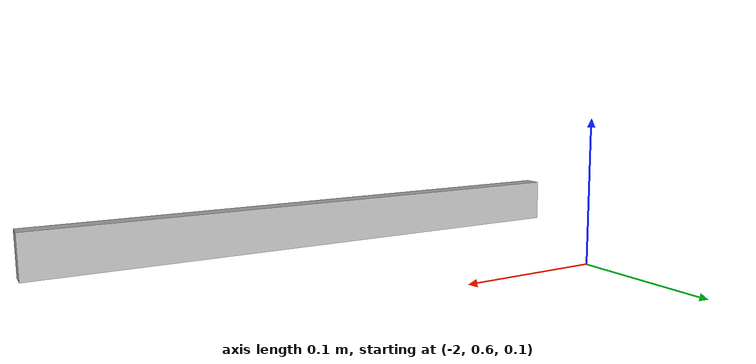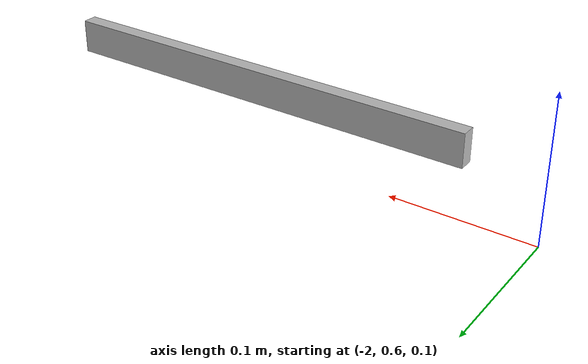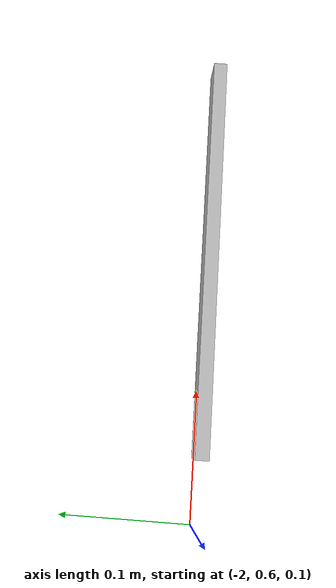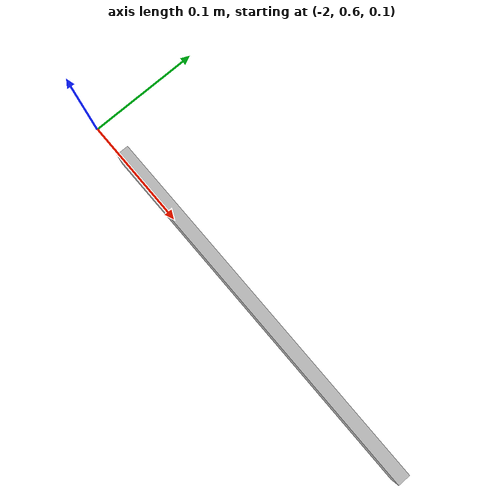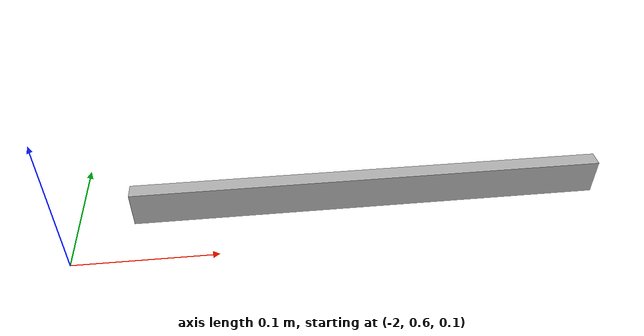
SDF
<?xml version='1.0'?>
<sdf version="1.5">
  <model name="traffic_bar_down">
    <static>true</static>
    <link name="traffic_bar_down">
        <pose frame=''>-1.8 0.6 0.15 0 0 0</pose>
        <collision name="collision">
         <geometry>
           <box>
             <size>0.3 0.01 0.023</size>
           </box>
         </geometry>
        </collision>
        <visual name="visual">
        <geometry>
          <box>
            <size>0.3 0.01 0.023</size>
          </box>
        </geometry>
        <material>
          <script>
            <uri>file:///home/david/my_ros2_ws/src/turtlebot3_autobot/map/traffic_bar_down/materials/scripts/traffic_bar.material</uri>
            <uri>file:///home/david/my_ros2_ws/src/turtlebot3_autobot/map/traffic_bar_down/materials/textures/traffic_bar.png</uri>
            <name>traffic_bar</name>
          </script>
        </material>
      </visual>
    </link>
    <static>1</static>
  </model>
</sdf>
